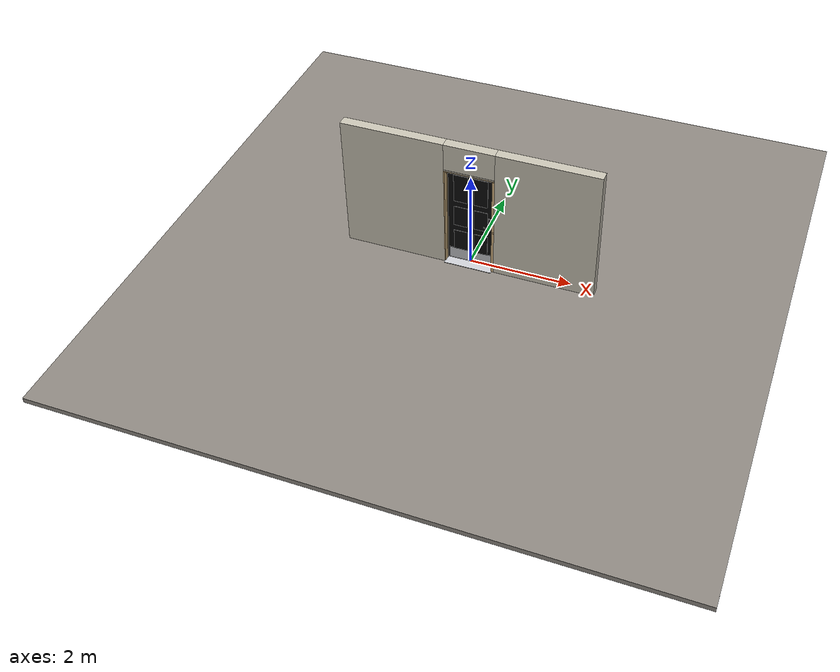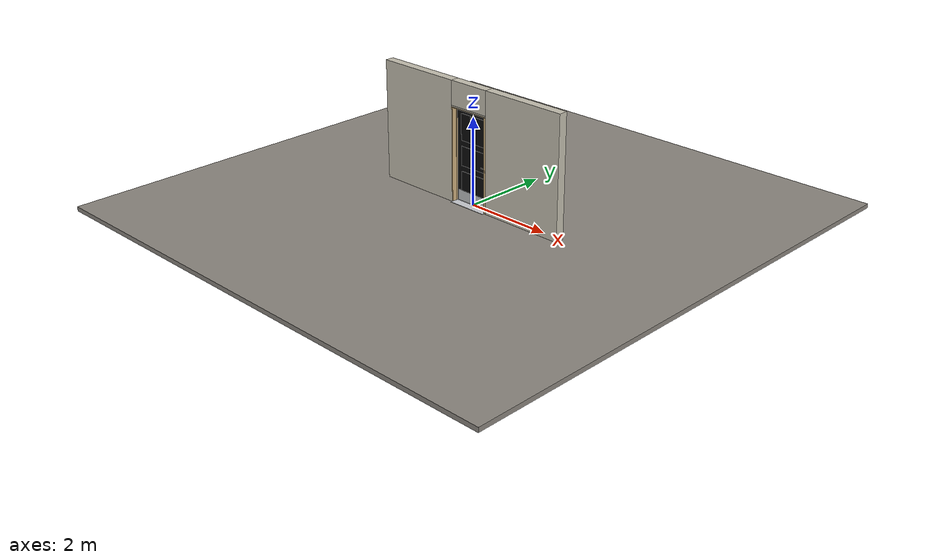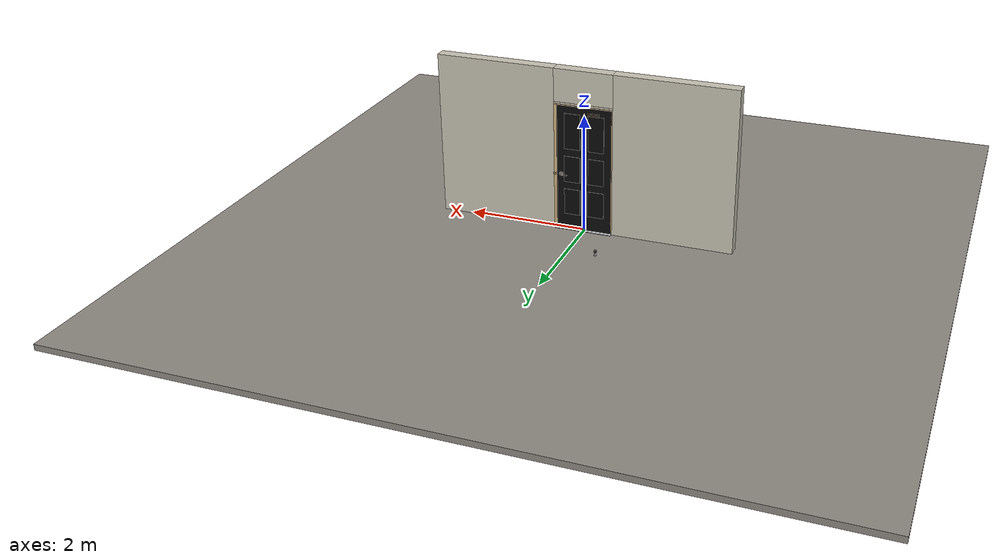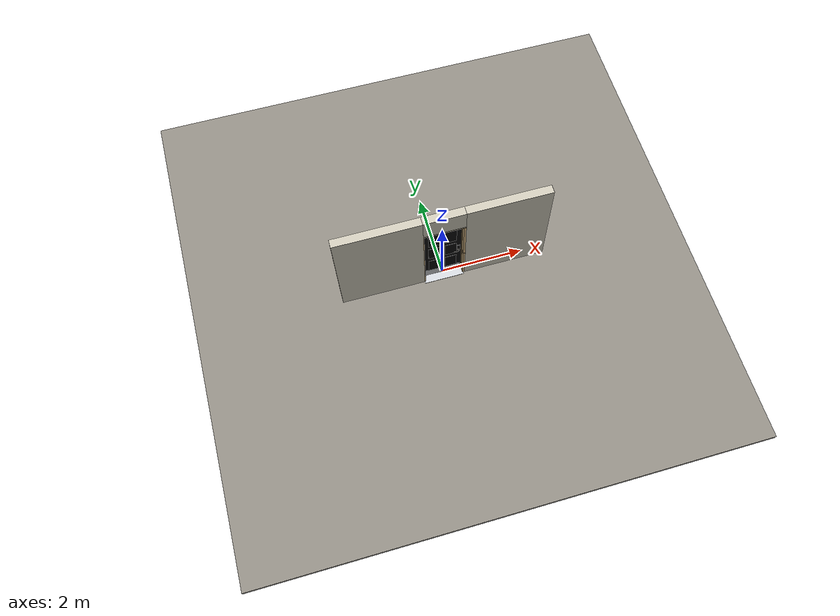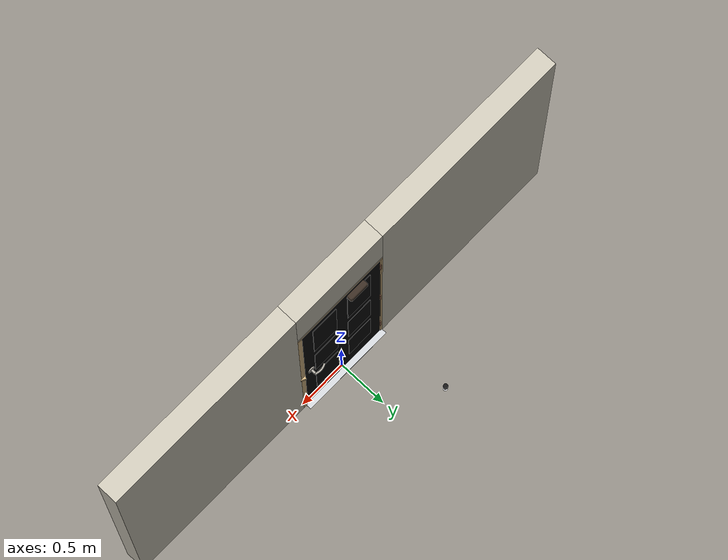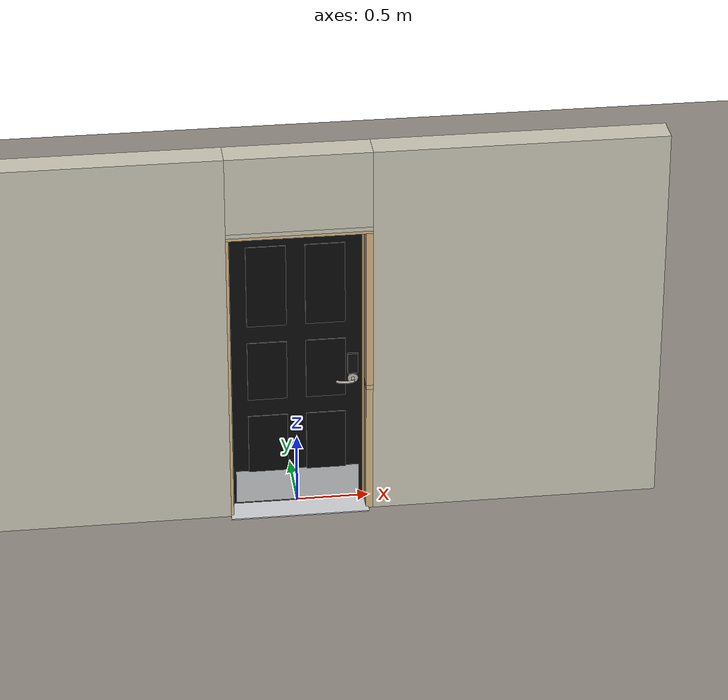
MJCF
<?xml version="1.0" ?>
<mujoco model="db0717_swing_single_simple">
  <compiler angle="radian" meshdir="../../hardware" texturedir="../../textures" autolimits="true" inertiafromgeom="false"/>
  <option timestep="0.002" integrator="implicitfast" cone="elliptic" impratio="10" noslip_iterations="3">
    <flag multiccd="enable"/>
  </option>
  <size memory="16M"/>
  <default>
    <geom condim="4" solref="0.005 1" solimp="0.95 0.99 0.001"/>
    <joint solreflimit="0.005 1" solimplimit="0.95 0.99 0.001"/>
    <tendon solreflimit="0.005 1"/>
    <equality solref="0.002 1"/>
  </default>
  <visual>
    <headlight ambient="0.4 0.4 0.4" diffuse="0.7 0.7 0.7" specular="0.2 0.2 0.2"/>
    <quality shadowsize="4096"/>
    <map znear="0.01" zfar="60"/>
  </visual>
  <asset>
    <mesh name="closer_body_78399c60f5" file="closer_body_78399c60f5.obj"/>
    <mesh name="hinge_e22b26c0c1" file="hinge_e22b26c0c1.obj"/>
    <mesh name="hinge_jamb_e1d088f8dc" file="hinge_jamb_e1d088f8dc.obj"/>
    <mesh name="keypad_body_3b2d063948" file="keypad_body_3b2d063948.obj"/>
    <mesh name="lever_a61139b160" file="lever_a61139b160.obj"/>
    <material name="mat_floor" rgba="0.55 0.53 0.5 1" specular="0.2" shininess="0.15" reflectance="0"/>
    <material name="mat_wall" rgba="0.78 0.76 0.7 1" specular="0.2" shininess="0.1" reflectance="0"/>
    <material name="mat_leaf" rgba="0.04 0.04 0.04 1" specular="0.2" shininess="0.57" reflectance="0"/>
    <material name="mat_leaf_panel" rgba="0.037 0.037 0.037 1" specular="0.2" shininess="0.57" reflectance="0"/>
    <material name="mat_hinge" rgba="0.45 0.3 0.22 1" specular="0.5" shininess="0.1" reflectance="0.2"/>
    <material name="mat_op_nickel_satin" rgba="0.72 0.7 0.66 1" specular="0.8" shininess="0.65" reflectance="0.4"/>
    <material name="mat_trim" rgba="0.85 0.66 0.3 1" specular="0.8" shininess="0.75" reflectance="0.4"/>
    <material name="mat_keypad" rgba="0.05 0.05 0.05 1" specular="0.38" shininess="0.3" reflectance="0.12"/>
    <material name="mat_key" rgba="0.85 0.85 0.82 1" specular="0.2" shininess="0.5" reflectance="0"/>
    <material name="mat_bolt" rgba="0.85 0.66 0.3 1" specular="0.8" shininess="0.75" reflectance="0.4"/>
    <material name="mat_frame" rgba="0.82 0.7 0.5 1" specular="0.2" shininess="0.45" reflectance="0"/>
    <material name="mat_seal" rgba="0.1 0.1 0.1 1" specular="0.2" shininess="0.1" reflectance="0"/>
    <material name="mat_threshold" rgba="0.8 0.81 0.83 1" specular="0.8" shininess="0.6" reflectance="0.4"/>
    <material name="mat_closer" rgba="0.22 0.17 0.13 1" specular="0.8" shininess="0.6" reflectance="0.4"/>
    <material name="mat_kick" rgba="0.75 0.76 0.77 1" specular="0.8" shininess="0.65" reflectance="0.4"/>
    <material name="mat_peephole" rgba="0.85 0.66 0.3 1" specular="0.8" shininess="0.75" reflectance="0.4"/>
    <material name="mat_mailslot" rgba="0.85 0.66 0.3 1" specular="0.8" shininess="0.75" reflectance="0.4"/>
    <material name="mat_bumper_stop" rgba="0.08 0.08 0.08 1" specular="0.2" shininess="0.1" reflectance="0"/>
    <material name="mat_stop_base" rgba="0.9 0.9 0.92 1" specular="0.8" shininess="0.9" reflectance="0.4"/>
    <texture name="skybox" type="skybox" builtin="gradient" rgb1="0.6 0.7 0.85" rgb2="0.9 0.92 0.95" width="256" height="256"/>
  </asset>
  <worldbody>
    <light name="sun" pos="1.5 -2.5 4" dir="-0.3 0.5 -0.8" directional="true" diffuse="0.8 0.8 0.8" specular="0.3 0.3 0.3" castshadow="true"/>
    <light name="fill" pos="-1.5 2.5 3" dir="0.3 -0.5 -0.7" directional="true" diffuse="0.35 0.35 0.4" castshadow="false"/>
    <camera name="robot_view" pos="0 -2.708813 1.812087" xyaxes="1 0 0 0 0.26963 0.962964" fovy="52"/>
    <camera name="far_view" pos="0 2.566812 1.812087" xyaxes="-1 0 0 0 -0.26963 0.962964" fovy="52"/>
    <camera name="iso" pos="2.004737 -2.286763 2.234138" xyaxes="0.741536 0.670913 0 -0.242917 0.268487 0.932151" fovy="46"/>
    <camera name="detail_handle" pos="0.4769 -0.723 1.245" xyaxes="0.97561 0.219512 0 -0.070934 0.315262 0.94635" fovy="38"/>
    <geom name="floor" type="box" size="6 6 0.05" pos="0 0 -0.05" material="mat_floor" group="0" contype="1" conaffinity="1" friction="0.8 0.005 0.0001" density="2400"/>
    <geom name="wall_left" type="box" size="1.01025 0.1 1.3735" pos="-1.48975 -0.071 1.3735" material="mat_wall" group="0" contype="1" conaffinity="1" friction="0.6 0.005 0.0001" density="800"/>
    <geom name="wall_right" type="box" size="0.99525 0.1 1.3735" pos="1.50475 -0.071 1.3735" material="mat_wall" group="0" contype="1" conaffinity="1" friction="0.6 0.005 0.0001" density="800"/>
    <geom name="wall_header" type="box" size="0.4945 0.1 0.2755" pos="0.015 -0.071 2.4715" material="mat_wall" group="0" contype="1" conaffinity="1" friction="0.6 0.005 0.0001" density="800"/>
    <geom name="hinge_0_jamb" type="mesh" mesh="hinge_jamb_e1d088f8dc" pos="-0.4575 0.029 0.259" quat="0 1 0 0" material="mat_hinge" group="1" contype="0" conaffinity="0" density="7850"/>
    <geom name="hinge_1_jamb" type="mesh" mesh="hinge_jamb_e1d088f8dc" pos="-0.4575 0.029 1.076" quat="0 1 0 0" material="mat_hinge" group="1" contype="0" conaffinity="0" density="7850"/>
    <geom name="hinge_2_jamb" type="mesh" mesh="hinge_jamb_e1d088f8dc" pos="-0.4575 0.029 1.963" quat="0 1 0 0" material="mat_hinge" group="1" contype="0" conaffinity="0" density="7850"/>
    <geom name="jamb_hinge" type="box" size="0.0095 0.1 1.0735" pos="-0.47 -0.071 1.0735" material="mat_frame" group="0" contype="1" conaffinity="1" friction="0.6 0.005 0.0001" density="400"/>
    <geom name="strike_965_wall_n" type="box" size="0.0245 0.081575 0.0167" pos="0.485 -0.089425 0.965" material="mat_frame" group="0" contype="1" conaffinity="1" friction="0.6 0.005 0.0001" density="400"/>
    <geom name="strike_965_wall_p" type="box" size="0.0245 0.008 0.0167" pos="0.485 0.01585 0.965" material="mat_frame" group="0" contype="1" conaffinity="1" friction="0.6 0.005 0.0001" density="400"/>
    <geom name="strike_965_ramp" type="box" size="0.0245 0.01649 0.0167" pos="0.489636 0.028673 0.965" quat="0.977148 0 0 -0.212558" material="mat_frame" group="0" contype="1" conaffinity="1" friction="0.12 0.005 0.0001" density="400"/>
    <geom name="strike_965_back" type="box" size="0.01615 0.00785 0.0167" pos="0.49335 0 0.965" material="mat_frame" group="0" contype="1" conaffinity="1" friction="0.6 0.005 0.0001" density="400"/>
    <geom name="jamb_strike_0" type="box" size="0.0245 0.1 0.47415" pos="0.485 -0.071 0.47415" material="mat_frame" group="0" contype="1" conaffinity="1" friction="0.6 0.005 0.0001" density="400"/>
    <geom name="jamb_strike_1" type="box" size="0.0245 0.1 0.58265" pos="0.485 -0.071 1.56435" material="mat_frame" group="0" contype="1" conaffinity="1" friction="0.6 0.005 0.0001" density="400"/>
    <geom name="jamb_head" type="box" size="0.4945 0.1 0.0095" pos="0.015 -0.071 2.1565" material="mat_frame" group="0" contype="1" conaffinity="1" friction="0.6 0.005 0.0001" density="400"/>
    <geom name="head_stud" type="box" size="0.4945 0.1 0.015" pos="0.015 -0.071 2.181" material="mat_wall" group="0" contype="1" conaffinity="1" friction="0.6 0.005 0.0001" density="500"/>
    <geom name="stop_hinge" type="box" size="0.0055 0.016 1.0735" pos="-0.455 -0.0385 1.0735" material="mat_frame" group="0" contype="1" conaffinity="1" friction="0.6 0.005 0.0001" density="400"/>
    <geom name="stop_strike" type="box" size="0.0055 0.016 1.0735" pos="0.455 -0.0385 1.0735" material="mat_frame" group="0" contype="1" conaffinity="1" friction="0.6 0.005 0.0001" density="400"/>
    <geom name="stop_head" type="box" size="0.4605 0.016 0.0055" pos="0 -0.0385 2.1415" material="mat_frame" group="0" contype="1" conaffinity="1" friction="0.6 0.005 0.0001" density="400"/>
    <geom name="seal_hinge" type="box" size="0.004 0.002 1.0735" pos="-0.4575 -0.024 1.0735" material="mat_seal" group="1" contype="0" conaffinity="0" density="1100"/>
    <geom name="seal_strike" type="box" size="0.004 0.002 1.0735" pos="0.4575 -0.024 1.0735" material="mat_seal" group="1" contype="0" conaffinity="0" density="1100"/>
    <geom name="seal_head" type="box" size="0.4405 0.002 0.008" pos="0 -0.024 2.135" material="mat_seal" group="1" contype="0" conaffinity="0" density="1100"/>
    <geom name="threshold" type="box" size="0.4795 0.15 0.004" pos="0 -0.071 0.004" material="mat_threshold" group="0" contype="1" conaffinity="1" friction="0.6 0.005 0.0001" density="2700"/>
    <geom name="door_stop_base" type="cylinder" size="0.022 0.003" pos="-0.4735 0.8059 0.003" material="mat_stop_base" group="0" contype="1" conaffinity="1" friction="0.6 0.005 0.0001" density="7850"/>
    <geom name="door_stop_post" type="cylinder" size="0.012 0.0245" pos="-0.4735 0.8059 0.0305" material="mat_stop_base" group="0" contype="1" conaffinity="1" friction="0.6 0.005 0.0001" density="7850"/>
    <geom name="door_stop_bumper" type="cylinder" size="0.022 0.02" pos="-0.4735 0.8059 0.075" material="mat_bumper_stop" group="0" contype="1" conaffinity="1" friction="0.6 0.005 0.0001" density="1100"/>
    <site name="approach_point" pos="0 -1.5 0" quat="1 0 0 0" size="0.05" rgba="0.2 0.9 0.2 0.5" group="4"/>
    <site name="goal_point" pos="0 1.5 0" quat="1 0 0 0" size="0.05" rgba="0.2 0.9 0.2 0.5" group="4"/>
    <site name="door_plane_center" pos="0 0 1.0735" quat="1 0 0 0" size="0.02" rgba="0.2 0.9 0.2 0.5" group="4"/>
    <body name="leaf" pos="-0.4605 0 0">
      <inertial pos="0.433138 0.004898 1.123696" mass="25.95412" quat="-0.480252 0.49618 0.51193 0.51097" diaginertia="1.73134192 12.918584232 14.628562196"/>
      <joint name="leaf_hinge" type="hinge" axis="0 0 1" pos="0.003 0.029 0" limited="true" range="0 1.570796" solreflimit="0.02 1" damping="6.268966" frictionloss="3.705652" stiffness="9.135494" springref="-1.778776" armature="0.02"/>
      <geom name="leaf_slab" type="box" size="0.457 0.022 1.067" pos="0.46 0 1.076" material="mat_leaf" group="0" contype="1" conaffinity="1" friction="0.4 0.005 0.0001" density="1"/>
      <geom name="leaf_panel_0_n" type="box" size="0.13573 0.003 0.221884" pos="0.25927 -0.025 0.485624" material="mat_leaf_panel" group="1" contype="0" conaffinity="0" density="1"/>
      <geom name="leaf_panel_0_p" type="box" size="0.13573 0.003 0.221884" pos="0.25927 0.025 0.485624" material="mat_leaf_panel" group="1" contype="0" conaffinity="0" density="1"/>
      <geom name="leaf_panel_1_n" type="box" size="0.13573 0.003 0.221884" pos="0.66073 -0.025 0.485624" material="mat_leaf_panel" group="1" contype="0" conaffinity="0" density="1"/>
      <geom name="leaf_panel_1_p" type="box" size="0.13573 0.003 0.221884" pos="0.66073 0.025 0.485624" material="mat_leaf_panel" group="1" contype="0" conaffinity="0" density="1"/>
      <geom name="leaf_panel_2_n" type="box" size="0.13573 0.003 0.221884" pos="0.25927 -0.025 1.059392" material="mat_leaf_panel" group="1" contype="0" conaffinity="0" density="1"/>
      <geom name="leaf_panel_2_p" type="box" size="0.13573 0.003 0.221884" pos="0.25927 0.025 1.059392" material="mat_leaf_panel" group="1" contype="0" conaffinity="0" density="1"/>
      <geom name="leaf_panel_3_n" type="box" size="0.13573 0.003 0.221884" pos="0.66073 -0.025 1.059392" material="mat_leaf_panel" group="1" contype="0" conaffinity="0" density="1"/>
      <geom name="leaf_panel_3_p" type="box" size="0.13573 0.003 0.221884" pos="0.66073 0.025 1.059392" material="mat_leaf_panel" group="1" contype="0" conaffinity="0" density="1"/>
      <geom name="leaf_panel_4_n" type="box" size="0.13573 0.003 0.302512" pos="0.25927 -0.025 1.713788" material="mat_leaf_panel" group="1" contype="0" conaffinity="0" density="1"/>
      <geom name="leaf_panel_4_p" type="box" size="0.13573 0.003 0.302512" pos="0.25927 0.025 1.713788" material="mat_leaf_panel" group="1" contype="0" conaffinity="0" density="1"/>
      <geom name="leaf_panel_5_n" type="box" size="0.13573 0.003 0.302512" pos="0.66073 -0.025 1.713788" material="mat_leaf_panel" group="1" contype="0" conaffinity="0" density="1"/>
      <geom name="leaf_panel_5_p" type="box" size="0.13573 0.003 0.302512" pos="0.66073 0.025 1.713788" material="mat_leaf_panel" group="1" contype="0" conaffinity="0" density="1"/>
      <geom name="hinge_0" type="mesh" mesh="hinge_e22b26c0c1" pos="0.003 0.029 0.259" quat="0 1 0 0" material="mat_hinge" group="1" contype="0" conaffinity="0" density="7850"/>
      <geom name="hinge_1" type="mesh" mesh="hinge_e22b26c0c1" pos="0.003 0.029 1.076" quat="0 1 0 0" material="mat_hinge" group="1" contype="0" conaffinity="0" density="7850"/>
      <geom name="hinge_2" type="mesh" mesh="hinge_e22b26c0c1" pos="0.003 0.029 1.963" quat="0 1 0 0" material="mat_hinge" group="1" contype="0" conaffinity="0" density="7850"/>
      <geom name="leaf_keypad_body" type="mesh" mesh="keypad_body_3b2d063948" pos="0.847 -0.022 1.085" quat="0.707107 0.707107 0 0" material="mat_keypad" group="0" contype="1" conaffinity="1" friction="0.6 0.005 0.0001" density="2000"/>
      <geom name="leaf_latch_bolt_faceplate" type="box" size="0.0006 0.01235 0.0267" pos="0.9164 0 0.965" material="mat_bolt" group="1" contype="0" conaffinity="0" density="8500"/>
      <geom name="closer_body" type="mesh" mesh="closer_body_78399c60f5" pos="0.3 0.022 2.054" quat="-0.707107 0.707107 0 0" material="mat_closer" group="1" contype="0" conaffinity="0" density="2000"/>
      <geom name="closer_body_col" type="box" size="0.1 0.03 0.025" pos="0.3 0.052 2.054" material="mat_closer" group="3" contype="1" conaffinity="1" rgba="0.8 0.3 0.3 0.25" friction="0.6 0.005 0.0001" density="2000"/>
      <geom name="kick_plate_n" type="box" size="0.427 0.0008 0.125" pos="0.46 -0.0228 0.144" material="mat_kick" group="2" contype="0" conaffinity="0" density="7900"/>
      <site name="leaf_edge_mid" pos="0.917 0 1.067" quat="1 0 0 0" size="0.02" rgba="0.2 0.9 0.2 0.5" group="4"/>
      <body name="leaf_handle" pos="0.847 0 0.965">
        <inertial pos="-0.025007 0.057273 0" mass="0.41" quat="0.235955 0 0 0.971764" diaginertia="0.000156759 0.000717302 0.000791484"/>
        <joint name="leaf_handle_hinge" type="hinge" axis="0 -1 0" limited="true" range="0 0.87" damping="0.208392" frictionloss="0.052" stiffness="1" springref="-0.35" armature="0.01"/>
        <geom name="leaf_handle_lever_p" type="mesh" mesh="lever_a61139b160" pos="0 0.022 0" quat="-0.707107 0.707107 0 0" material="mat_op_nickel_satin" group="1" contype="0" conaffinity="0" density="3000"/>
        <geom name="leaf_handle_lever_col_p" type="capsule" size="0.008 0.048" pos="-0.056 0.077 0" quat="0.707107 0 -0.707107 0" material="mat_op_nickel_satin" group="3" contype="1" conaffinity="1" rgba="0.8 0.3 0.3 0.25" friction="0.7 0.01 0.0001" density="3000"/>
        <geom name="leaf_handle_hub_col_p" type="cylinder" size="0.012 0.022" pos="0 0.052 0" quat="0.707107 -0.707107 0 0" material="mat_op_nickel_satin" group="3" contype="1" conaffinity="1" rgba="0.8 0.3 0.3 0.25" friction="0.6 0.005 0.0001" density="3000"/>
        <site name="leaf_handle_grip_p" pos="-0.0896 0.077 0" quat="1 0 0 0" size="0.012" rgba="0.2 0.9 0.2 0.5" group="4"/>
      </body>
      <body name="leaf_handle_out" pos="0.847 0 0.965">
        <inertial pos="-0.025007 -0.057273 0" mass="0.41" quat="-0.235955 0 0 0.971764" diaginertia="0.000156759 0.000717302 0.000791484"/>
        <joint name="leaf_handle_out_hinge" type="hinge" axis="0 -1 0" limited="true" range="0 0.09" damping="0.208382" frictionloss="0.052" stiffness="1" springref="-0.35" armature="0.01"/>
        <geom name="leaf_handle_out_lever_n" type="mesh" mesh="lever_a61139b160" pos="0 -0.022 0" quat="0.707107 0.707107 0 0" material="mat_op_nickel_satin" group="1" contype="0" conaffinity="0" density="3000"/>
        <geom name="leaf_handle_out_lever_col_n" type="capsule" size="0.008 0.048" pos="-0.056 -0.077 0" quat="0.707107 0 -0.707107 0" material="mat_op_nickel_satin" group="3" contype="1" conaffinity="1" rgba="0.8 0.3 0.3 0.25" friction="0.7 0.01 0.0001" density="3000"/>
        <geom name="leaf_handle_out_hub_col_n" type="cylinder" size="0.012 0.022" pos="0 -0.052 0" quat="0.707107 -0.707107 0 0" material="mat_op_nickel_satin" group="3" contype="1" conaffinity="1" rgba="0.8 0.3 0.3 0.25" friction="0.6 0.005 0.0001" density="3000"/>
        <site name="leaf_handle_out_grip_n" pos="-0.0896 -0.077 0" quat="1 0 0 0" size="0.012" rgba="0.2 0.9 0.2 0.5" group="4"/>
      </body>
      <body name="leaf_latch_bolt" pos="0.917 0 0.965">
        <inertial pos="-0.00865 0 0" mass="0.041419" quat="0.92388 -0.382683 0 0" diaginertia="0.000000798 0.000005598 0.000005598"/>
        <joint name="leaf_latch_bolt_slide" type="slide" axis="-1 0 0" limited="true" range="0 0.0127" damping="2" frictionloss="0.3" stiffness="300" springref="-0.008333" armature="0.1"/>
        <geom name="leaf_latch_bolt_capsule" type="capsule" size="0.00635 0.015" pos="-0.00865 0 0" quat="0.707107 0 0.707107 0" material="mat_bolt" group="0" contype="1" conaffinity="1" friction="0.2 0.005 0.0001" density="8500"/>
      </body>
    </body>
  </worldbody>
  <tendon>
    <fixed name="leaf_latch_bolt_coupling" limited="true" range="0 10">
      <joint joint="leaf_latch_bolt_slide" coef="1"/>
      <joint joint="leaf_handle_hinge" coef="-0.015679"/>
      <joint joint="leaf_handle_out_hinge" coef="-0.015679"/>
    </fixed>
  </tendon>
  <sensor>
    <jointpos name="leaf_hinge_pos" joint="leaf_hinge"/>
    <jointvel name="leaf_hinge_vel" joint="leaf_hinge"/>
    <jointpos name="leaf_handle_hinge_pos" joint="leaf_handle_hinge"/>
    <jointvel name="leaf_handle_hinge_vel" joint="leaf_handle_hinge"/>
    <jointpos name="leaf_handle_out_hinge_pos" joint="leaf_handle_out_hinge"/>
    <jointvel name="leaf_handle_out_hinge_vel" joint="leaf_handle_out_hinge"/>
    <jointpos name="leaf_latch_bolt_slide_pos" joint="leaf_latch_bolt_slide"/>
    <jointvel name="leaf_latch_bolt_slide_vel" joint="leaf_latch_bolt_slide"/>
  </sensor>
</mujoco>
